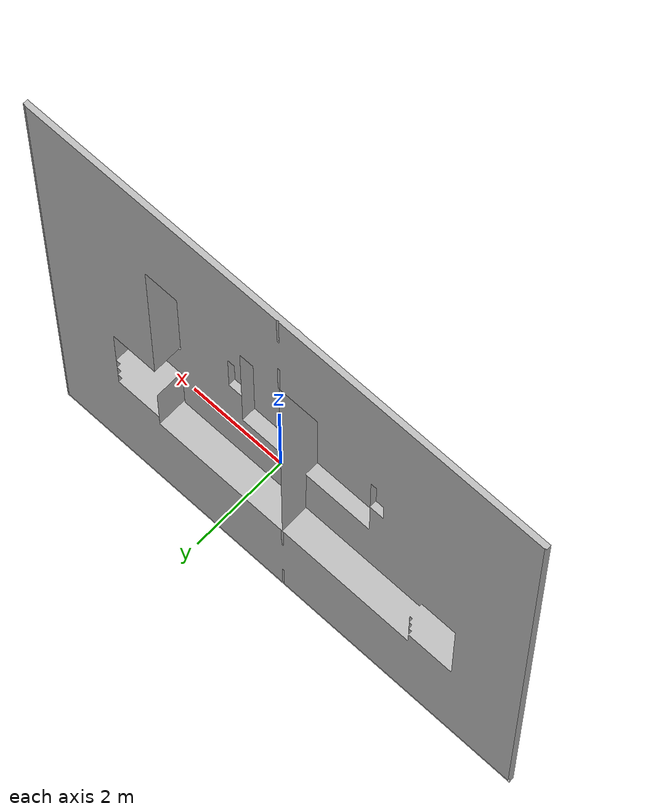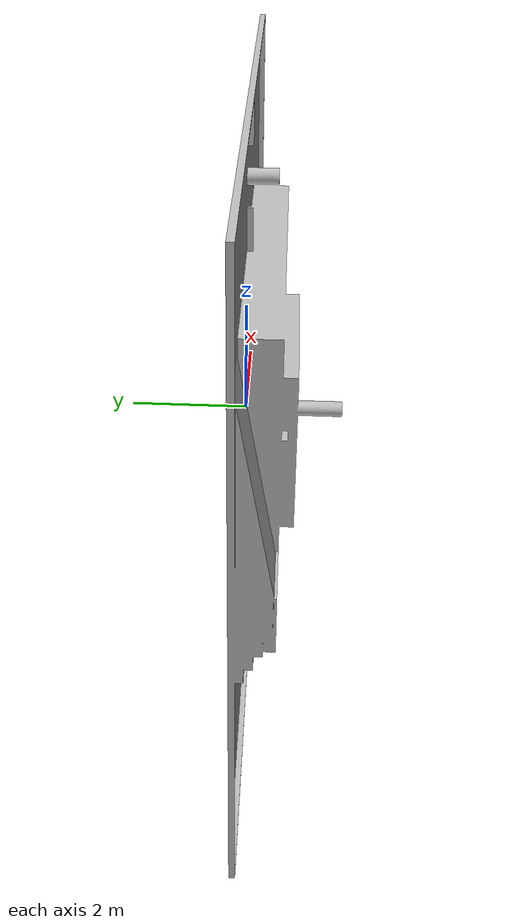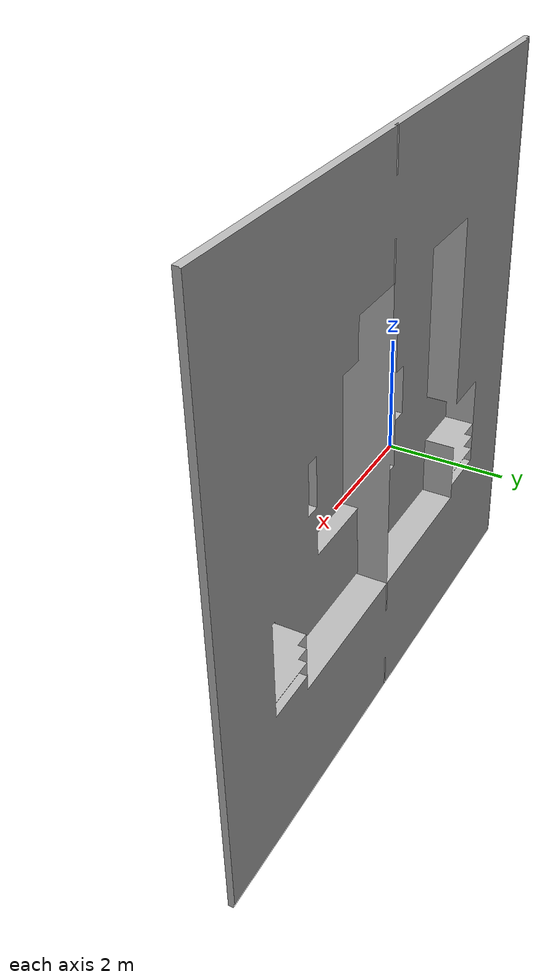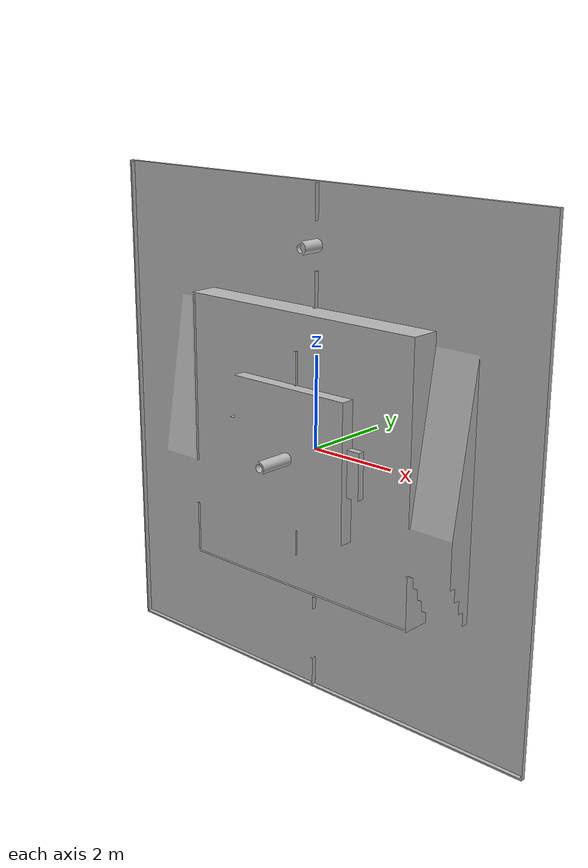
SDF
<?xml version="1.0" ?>
<sdf version="1.10">

  <world name="robocon2027">

    <physics name="default_physics" type="ode">
      <max_step_size>0.001</max_step_size>
      <real_time_factor>1.0</real_time_factor>
      <real_time_update_rate>1000</real_time_update_rate>
    </physics>

    <plugin
      filename="gz-sim-physics-system"
      name="gz::sim::systems::Physics"/>

    <plugin
      filename="gz-sim-user-commands-system"
      name="gz::sim::systems::UserCommands"/>

    <plugin
      filename="gz-sim-scene-broadcaster-system"
      name="gz::sim::systems::SceneBroadcaster"/>

    <light name="sun" type="directional">
      <cast_shadows>true</cast_shadows>
      <pose>0 0 12 0 0 0</pose>
      <diffuse>0.9 0.9 0.9 1</diffuse>
      <specular>0.2 0.2 0.2 1</specular>
      <direction>-0.3 -0.4 -1.0</direction>
    </light>

    <model name="robocon2027_field">

      <static>true</static>

      <pose>0 0 0 1.57079632679 0 0</pose>

      <link name="field">

        <visual name="field_visual">
          <geometry>
            <mesh>
              <uri>model://robocon2027_description/meshes/robocon2027.glb</uri>
              <scale>1 1 1</scale>
            </mesh>
          </geometry>
        </visual>

        <collision name="field_collision">
          <geometry>
            <mesh>
              <uri>model://robocon2027_description/meshes/robocon2027.stl</uri>
              <scale>1 1 1</scale>
            </mesh>
          </geometry>
        </collision>

      </link>
    </model>

  </world>

</sdf>
